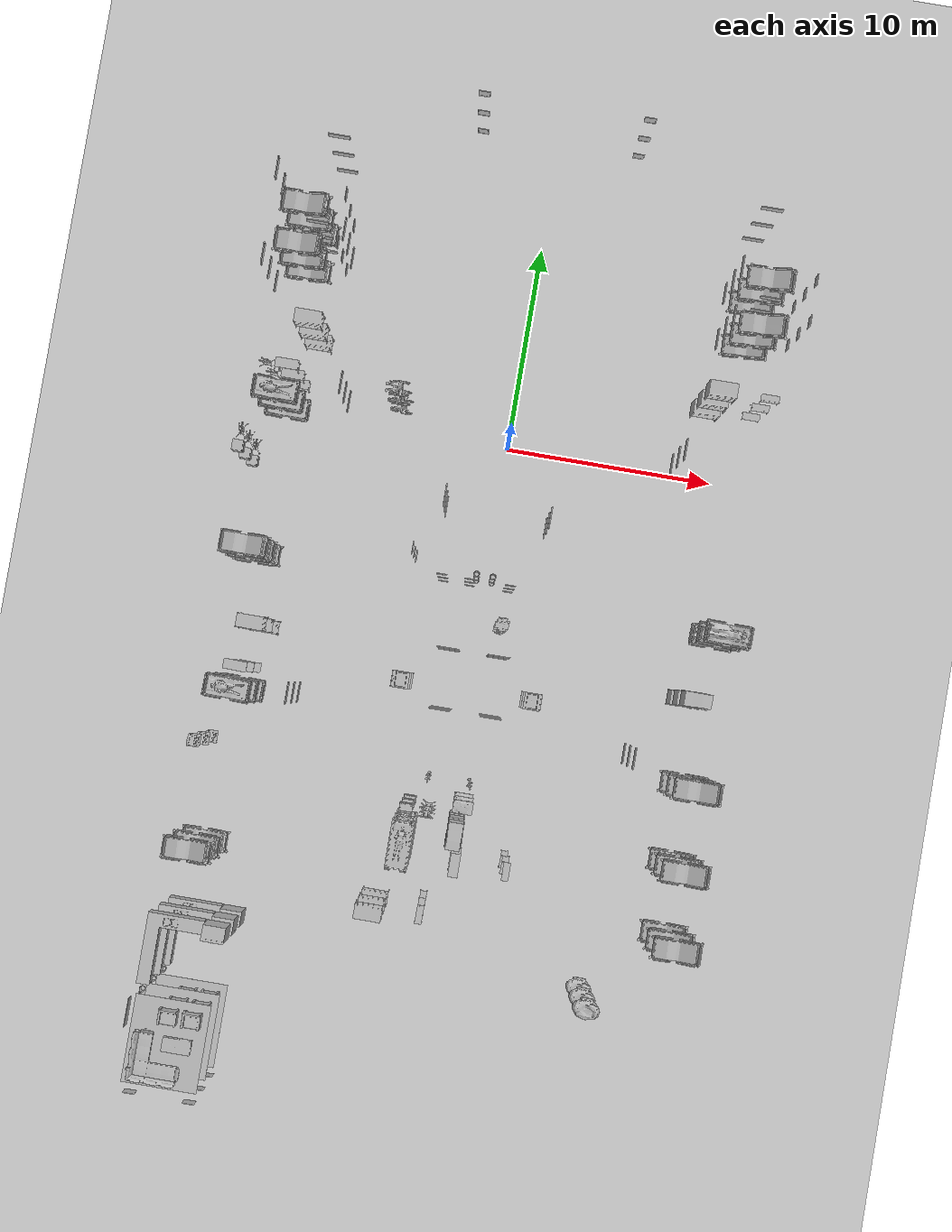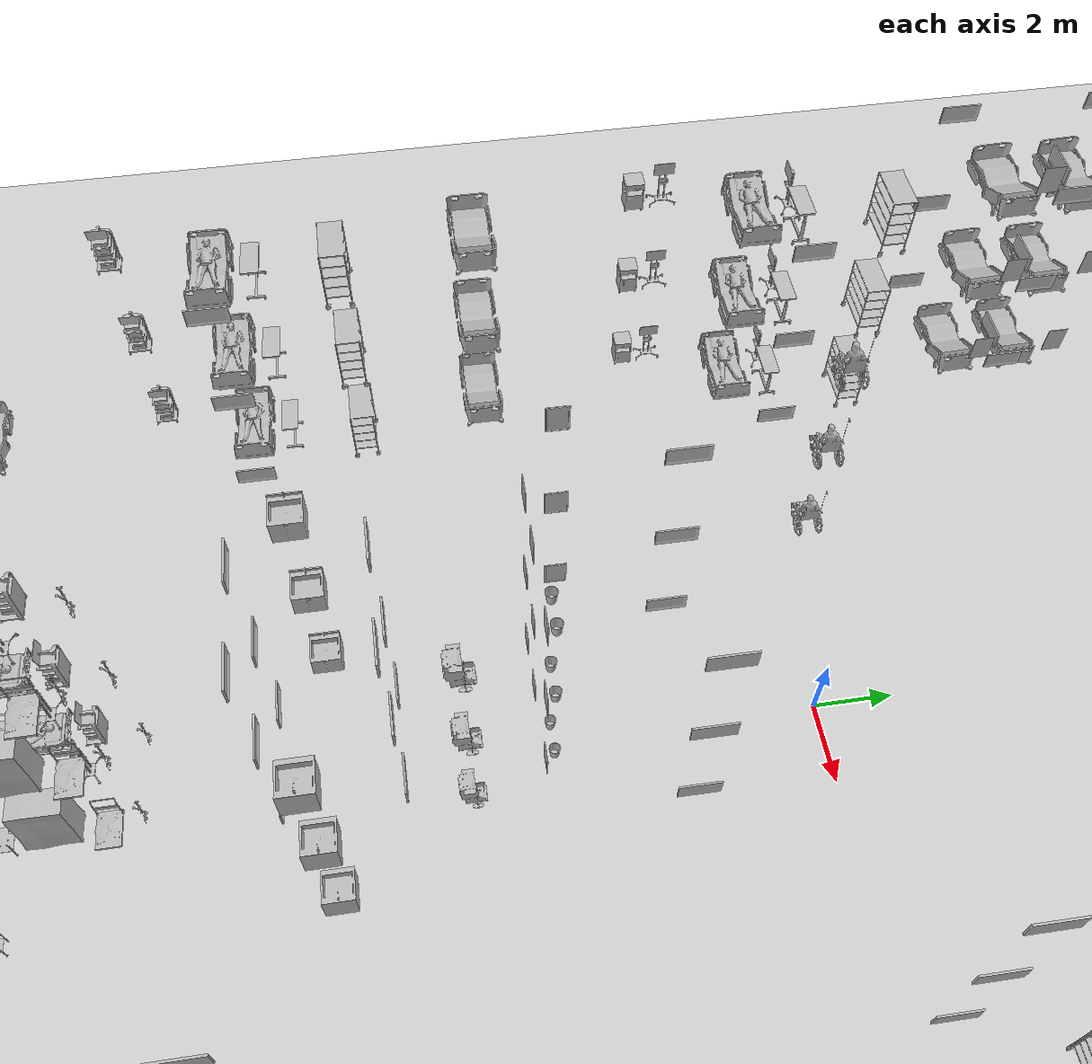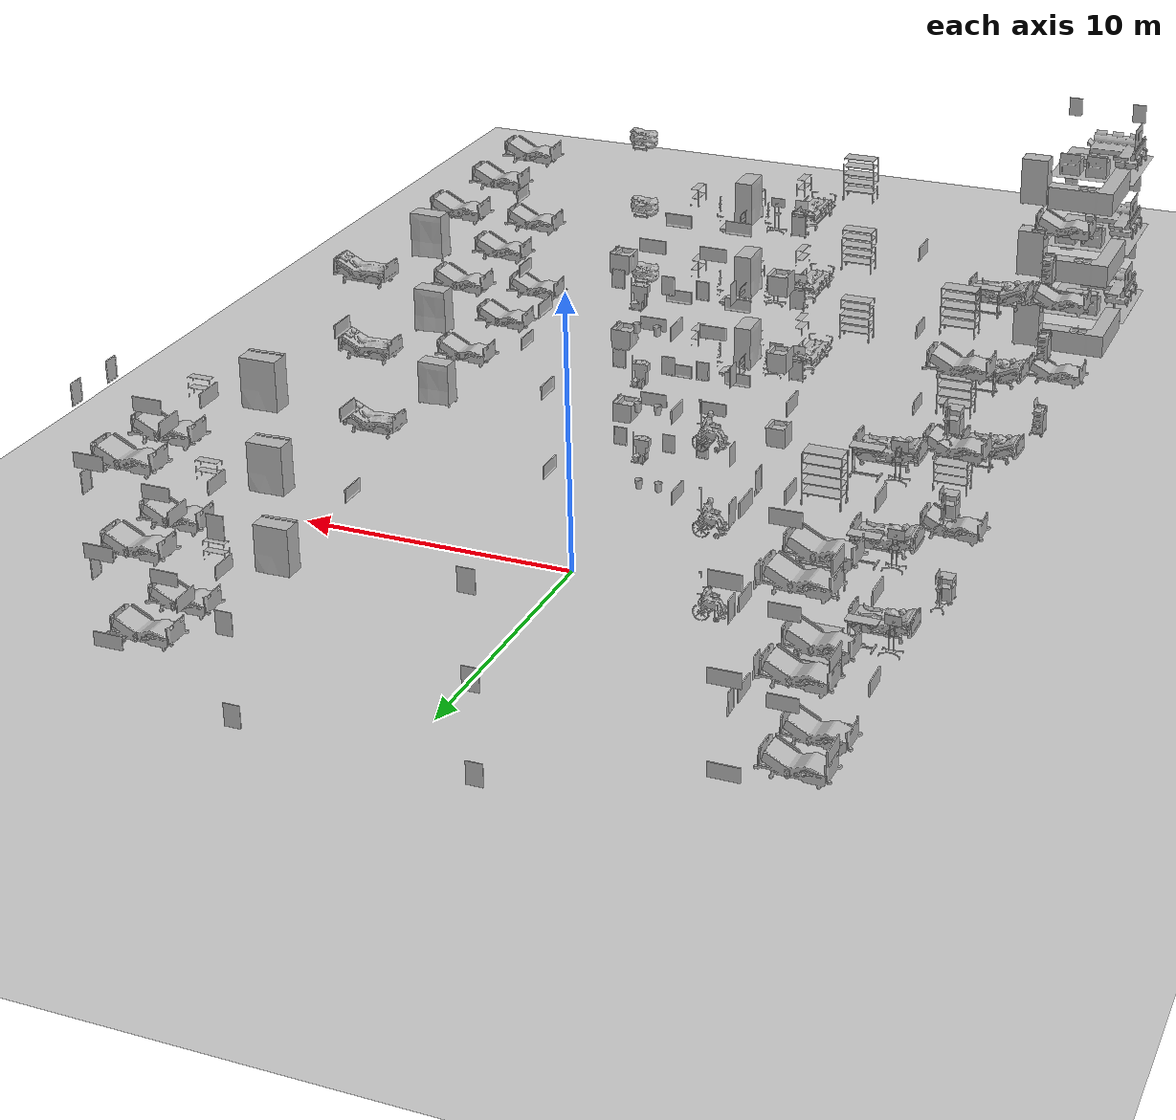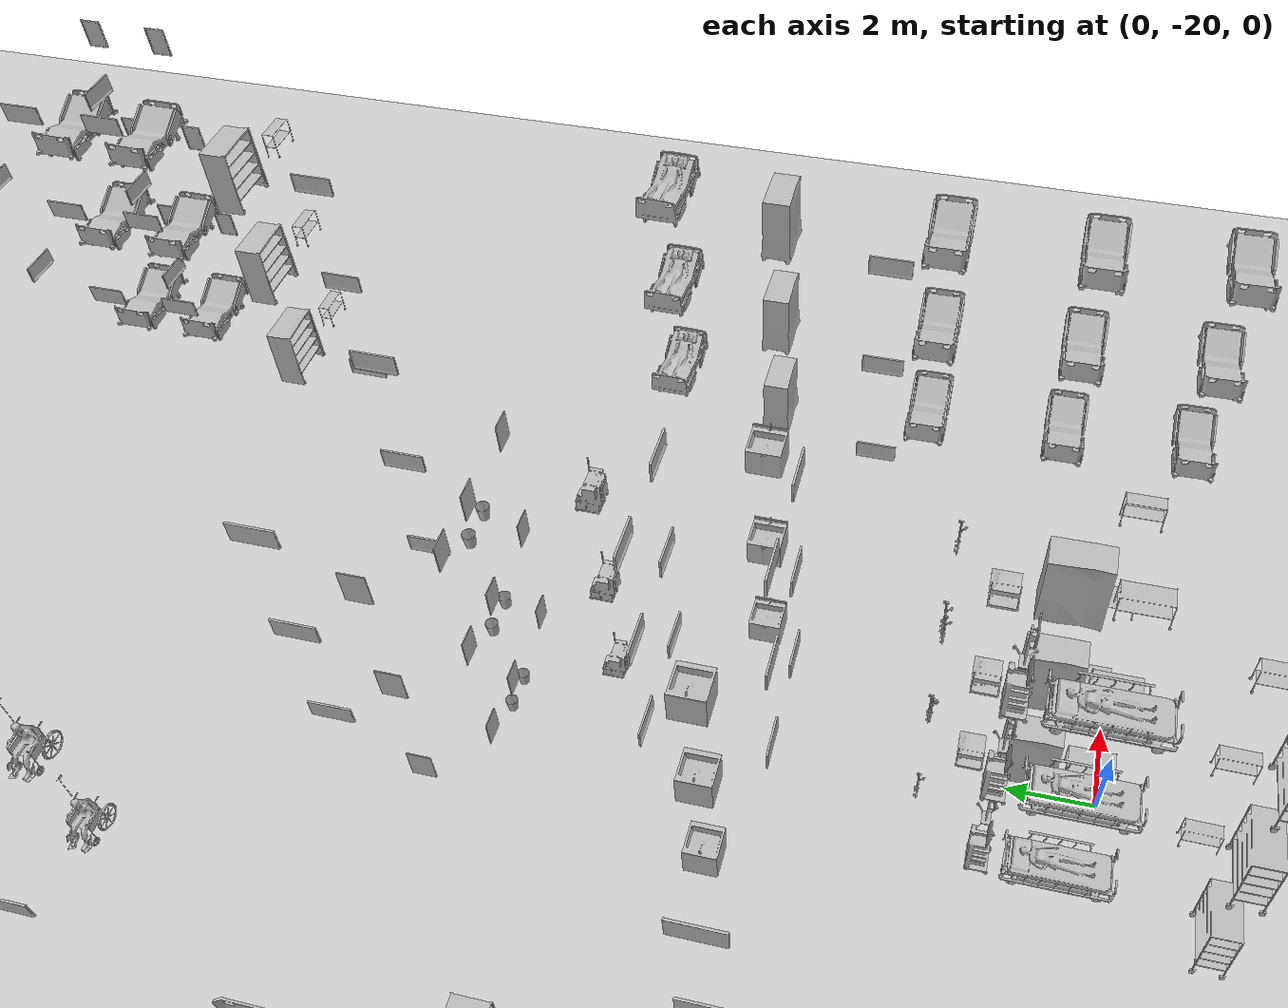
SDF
<sdf version="1.6">
 <world name="world">
  <gravity>0 0 -9.8</gravity>
  <physics default="0" name="default_physics" type="ode">
   <max_step_size>0.001</max_step_size>
   <real_time_factor>1</real_time_factor>
   <real_time_update_rate>1000</real_time_update_rate>
  </physics>
  <scene><ambient>0.6 0.6 0.6 1</ambient><background>0.4 0.4 0.4 1</background><shadows>false</shadows></scene>
  <plugin filename="gz-sim-physics-system" name="gz::sim::systems::Physics"/>
  <plugin filename="gz-sim-user-commands-system" name="gz::sim::systems::UserCommands"/>
  <plugin filename="gz-sim-scene-broadcaster-system" name="gz::sim::systems::SceneBroadcaster"/>
  <plugin filename="gz-sim-sensors-system" name="gz::sim::systems::Sensors">
   <render_engine>ogre2</render_engine>
  </plugin>
  <plugin filename="gz-sim-imu-system" name="gz::sim::systems::Imu"/>
  <plugin filename="gz-sim-contact-system" name="gz::sim::systems::Contact"/>
  <include><uri>model://sun</uri></include>
  <include><uri>model://ground_plane</uri><pose>0 0 -0.1 0 -0 0</pose></include>
  <include>
   <uri>model://CGMClassic</uri>
   <static>true</static>
   <name>CGMClassic_1</name>
   <pose>11.1777 -18.4129 0 0 0 -3.13719</pose>
  </include>
  <include>
   <uri>model://CGMClassic</uri>
   <static>true</static>
   <name>CGMClassic_2</name>
   <pose>11.1179 -14.6493 0 0 0 -3.13599</pose>
  </include>
  <include>
   <uri>model://PatientWheelChair</uri>
   <static>true</static>
   <name>PatientWheelChair_1</name>
   <pose>-5.46091 1.23577 0 0 0 -1.54828</pose>
  </include>
  <include>
   <uri>model://SurgicalTrolley</uri>
   <static>true</static>
   <name>SurgicalTrolley_1</name>
   <pose>11.4301 3.56328 0 0 -0 0</pose>
  </include>
  <include>
   <uri>model://CGMClassic</uri>
   <static>true</static>
   <name>CGMClassic_3</name>
   <pose>-11.2304 -21.1134 0 0 0 -3.11834</pose>
  </include>
  <include>
   <uri>model://aws_robomaker_residential_CoffeeTable_01</uri>
   <static>true</static>
   <name>aws_robomaker_residential_CoffeeTable_01_1</name>
   <pose>-10.2383 -29.9144 0 0 -0 0</pose>
  </include>
  <include>
   <uri>model://aws_robomaker_residential_Sofa_01</uri>
   <static>true</static>
   <name>aws_robomaker_residential_Sofa_01_1</name>
   <pose>-11.077 -30.5544 -1e-05 2.6e-05 -3e-06 1.56984</pose>
  </include>
  <include>
   <uri>model://aws_robomaker_residential_TV_02</uri>
   <static>true</static>
   <name>aws_robomaker_residential_TV_02_1</name>
   <pose>-12.4122 -28.4594 1.53211 0 -0 3.13999</pose>
  </include>
  <include>
   <uri>model://aws_robomaker_residential_KitchenCabinet_01</uri>
   <static>true</static>
   <name>aws_robomaker_residential_KitchenCabinet_01_1</name>
   <pose>-11.1379 -25.6941 0 0 -0 0</pose>
  </include>
  <include>
   <uri>model://aws_robomaker_residential_Refrigerator_01</uri>
   <static>true</static>
   <name>aws_robomaker_residential_Refrigerator_01_1</name>
   <pose>-9.28238 -24.5015 0 0 -0 0</pose>
  </include>
  <include>
   <uri>model://aws_robomaker_residential_SofaB_01</uri>
   <static>true</static>
   <name>aws_robomaker_residential_SofaB_01_1</name>
   <pose>-10.8238 -28.6662 -5e-06 -1.3e-05 -2e-06 -1.56116</pose>
  </include>
  <include>
   <uri>model://aws_robomaker_residential_SofaB_01</uri>
   <static>true</static>
   <name>aws_robomaker_residential_SofaB_01_2</name>
   <pose>-9.73697 -28.6538 -3e-06 1.3e-05 -4e-06 -1.56077</pose>
  </include>
  <include>
   <uri>model://aws_robomaker_residential_PortraitA_01</uri>
   <static>true</static>
   <name>aws_robomaker_residential_PortraitA_01_1</name>
   <pose>1.14738 -6.92303 1.41115 0 -0 0</pose>
  </include>
  <include>
   <uri>model://aws_robomaker_residential_PortraitD_02</uri>
   <static>true</static>
   <name>aws_robomaker_residential_PortraitD_02_1</name>
   <pose>2.40772 -3.61975 1.54508 0 0 -1.57619</pose>
  </include>
  <include>
   <uri>model://MopCart3</uri>
   <static>true</static>
   <name>MopCart3_1</name>
   <pose>1.07736 -8.59036 -6.7e-05 0 1e-06 0</pose>
  </include>
  <include>
   <uri>model://aws_robomaker_residential_PortraitA_01</uri>
   <static>true</static>
   <name>aws_robomaker_residential_PortraitA_01_2</name>
   <pose>-0.706092 -6.93108 1.41115 0 -0 0</pose>
  </include>
  <include>
   <uri>model://aws_robomaker_residential_PortraitA_01</uri>
   <static>true</static>
   <name>aws_robomaker_residential_PortraitA_01_3</name>
   <pose>-1.97245 -6.9216 1.41115 0 -0 0</pose>
  </include>
  <include>
   <uri>model://aws_robomaker_residential_PortraitD_02</uri>
   <static>true</static>
   <name>aws_robomaker_residential_PortraitD_02_2</name>
   <pose>-2.43341 -3.38621 1.54508 0 -0 1.57083</pose>
  </include>
  <include>
   <uri>model://ElderLadyPatient</uri>
   <static>true</static>
   <name>ElderLadyPatient_1</name>
   <pose>-10.9972 0.231354 0.001654 0 -0 0</pose>
  </include>
  <include>
   <uri>model://ElderLadyPatient</uri>
   <static>true</static>
   <name>ElderLadyPatient_2</name>
   <pose>-10.8133 -13.5925 0.001657 0 -2e-06 -0.025052</pose>
  </include>
  <include>
   <uri>model://CGMClassic</uri>
   <static>true</static>
   <name>CGMClassic_4</name>
   <pose>-11.0878 -7.00992 0 0 -0 3.1351</pose>
  </include>
  <include>
   <uri>model://aws_robomaker_residential_Trash_01</uri>
   <static>true</static>
   <name>aws_robomaker_residential_Trash_01_1</name>
   <pose>0.316178 -6.58235 0.000903 0 -2e-06 0</pose>
  </include>
  <include>
   <uri>model://aws_robomaker_residential_Trash_01</uri>
   <static>true</static>
   <name>aws_robomaker_residential_Trash_01_2</name>
   <pose>-0.436645 -6.57758 0.000903 -1e-06 -1e-06 0</pose>
  </include>
  <include>
   <uri>model://aws_robomaker_residential_Trash_01</uri>
   <static>true</static>
   <name>aws_robomaker_residential_Trash_01_3</name>
   <pose>-12.1773 -27.6293 0.000894 -1e-06 -1e-06 0</pose>
  </include>
  <include>
   <uri>model://aws_robomaker_residential_PortraitE_01</uri>
   <static>true</static>
   <name>aws_robomaker_residential_PortraitE_01_1</name>
   <pose>-9.06141 -31.9238 1.38136 0 -0 0</pose>
  </include>
  <include>
   <uri>model://aws_robomaker_residential_PortraitE_01</uri>
   <static>true</static>
   <name>aws_robomaker_residential_PortraitE_01_2</name>
   <pose>-11.7398 -31.9011 1.38136 0 -0 0</pose>
  </include>
  <include>
   <uri>model://InstrumentCart1</uri>
   <static>true</static>
   <name>InstrumentCart1_1</name>
   <pose>-11.8071 -16.1825 0 0 -0 1.56702</pose>
  </include>
  <include>
   <uri>model://InstrumentCart2</uri>
   <static>true</static>
   <name>InstrumentCart2_1</name>
   <pose>-12.0906 -1.87329 0.051875 0 -0 1.57773</pose>
  </include>
  <include>
   <uri>model://InstrumentCart2</uri>
   <static>true</static>
   <name>InstrumentCart2_2</name>
   <pose>-11.5231 1.34237 0 0 -0 0</pose>
  </include>
  <include>
   <uri>model://aws_robomaker_residential_Carpet_01</uri>
   <static>true</static>
   <name>aws_robomaker_residential_Carpet_01_1</name>
   <pose>-10.7338 -29.9243 0 0 -0 0</pose>
  </include>
  <include>
   <uri>model://CGMClassic</uri>
   <static>true</static>
   <name>CGMClassic_5</name>
   <pose>-11.0106 8.9505 -0.008203 -0.035019 -0.000392 3.13388</pose>
  </include>
  <include>
   <uri>model://CGMClassic</uri>
   <static>true</static>
   <name>CGMClassic_6</name>
   <pose>-11.025 7.10335 0 -0.035021 1.8e-05 -3.13762</pose>
  </include>
  <include>
   <uri>model://BedTable</uri>
   <static>true</static>
   <name>BedTable_1</name>
   <pose>-10.4759 1.39442 0.001184 0 -3e-06 0</pose>
  </include>
  <include>
   <uri>model://BedTable</uri>
   <static>true</static>
   <name>BedTable_2</name>
   <pose>-10.5874 -12.5084 0.001189 0 -0 3.11588</pose>
  </include>
  <include>
   <uri>model://BedsideTable</uri>
   <static>true</static>
   <name>BedsideTable_1</name>
   <pose>-12.1499 -2.63111 0.00018 1e-06 -0 -0.00878</pose>
  </include>
  <include>
   <uri>model://TrolleyBedPatient</uri>
   <static>true</static>
   <name>TrolleyBedPatient_1</name>
   <pose>-1.83202 -19.2612 0 0 -0 0</pose>
  </include>
  <include>
   <uri>model://Shower</uri>
   <static>true</static>
   <name>Shower_1</name>
   <pose>-1.07422 -16.1332 0 0 -0 0</pose>
  </include>
  <include>
   <uri>model://Shower</uri>
   <static>true</static>
   <name>Shower_2</name>
   <pose>0.853327 -16.1492 0 0 -0 0</pose>
  </include>
  <include>
   <uri>model://SurgicalTrolley</uri>
   <static>true</static>
   <name>SurgicalTrolley_2</name>
   <pose>-0.411421 -22.2085 0 0 0 -1.58175</pose>
  </include>
  <include>
   <uri>model://SurgicalTrolley</uri>
   <static>true</static>
   <name>SurgicalTrolley_3</name>
   <pose>3.11747 -19.6565 0 0 -0 1.57031</pose>
  </include>
  <include>
   <uri>model://SurgicalTrolleyMed</uri>
   <static>true</static>
   <name>SurgicalTrolleyMed_1</name>
   <pose>0.770804 -19.7749 0 0 0 -1.56798</pose>
  </include>
  <include>
   <uri>model://InstrumentCart1</uri>
   <static>true</static>
   <name>InstrumentCart1_2</name>
   <pose>-11.8071 -16.1825 0 0 -0 1.56702</pose>
  </include>
  <include>
   <uri>model://InstrumentCart2</uri>
   <static>true</static>
   <name>InstrumentCart2_3</name>
   <pose>-0.869537 -17.7436 0 0 0 -0.002595</pose>
  </include>
  <include>
   <uri>model://StorageRackCovered</uri>
   <static>true</static>
   <name>StorageRackCovered_1</name>
   <pose>0.546476 -18.3985 -0 0 -0 1.56584</pose>
  </include>
  <include>
   <uri>model://StorageRack</uri>
   <static>true</static>
   <name>StorageRack_2</name>
   <pose>-2.69866 -22.4178 -8e-06 0 4e-06 0</pose>
  </include>
  <include>
   <uri>model://KitchenSink</uri>
   <static>true</static>
   <name>KitchenSink_1</name>
   <pose>3.06236 -11.8809 -0.001614 0 -0 3.1391</pose>
  </include>
  <include>
   <uri>model://KitchenSink</uri>
   <static>true</static>
   <name>KitchenSink_2</name>
   <pose>-3.09305 -11.8988 -0.001609 0 -0 0</pose>
  </include>
  <include>
   <uri>model://aws_robomaker_residential_PortraitD_01</uri>
   <static>true</static>
   <name>aws_robomaker_residential_PortraitD_01_1</name>
   <pose>-1.14723 -10.143 1.57344 0 -0 0</pose>
  </include>
  <include>
   <uri>model://aws_robomaker_residential_PortraitD_01</uri>
   <static>true</static>
   <name>aws_robomaker_residential_PortraitD_01_2</name>
   <pose>1.16956 -10.1327 1.57344 0 -0 0</pose>
  </include>
  <include>
   <uri>model://aws_robomaker_residential_PortraitD_01</uri>
   <static>true</static>
   <name>aws_robomaker_residential_PortraitD_01_3</name>
   <pose>1.2703 -12.9084 1.57344 0 0 -3.14134</pose>
  </include>
  <include>
   <uri>model://aws_robomaker_residential_PortraitD_01</uri>
   <static>true</static>
   <name>aws_robomaker_residential_PortraitD_01_4</name>
   <pose>-1.06108 -12.9155 1.57344 0 0 -3.14134</pose>
  </include>
  <include>
   <uri>model://aws_robomaker_residential_PortraitD_02</uri>
   <static>true</static>
   <name>aws_robomaker_residential_PortraitD_02_3</name>
   <pose>7.89294 -13.6155 1.54508 0 0 -1.57619</pose>
  </include>
  <include>
   <uri>model://aws_robomaker_residential_PortraitD_02</uri>
   <static>true</static>
   <name>aws_robomaker_residential_PortraitD_02_4</name>
   <pose>7.88791 0.445446 1.54508 0 0 -1.57619</pose>
  </include>
  <include>
   <uri>model://aws_robomaker_residential_PortraitD_02</uri>
   <static>true</static>
   <name>aws_robomaker_residential_PortraitD_02_5</name>
   <pose>-7.92095 0.84255 1.54508 0 -0 1.57083</pose>
  </include>
  <include>
   <uri>model://aws_robomaker_residential_PortraitD_02</uri>
   <static>true</static>
   <name>aws_robomaker_residential_PortraitD_02_6</name>
   <pose>-7.90937 -13.3417 1.54508 0 -0 1.57083</pose>
  </include>
  <include>
   <uri>model://aws_robomaker_residential_PortraitD_02</uri>
   <static>true</static>
   <name>aws_robomaker_residential_PortraitD_02_7</name>
   <pose>-12.3841 6.01232 1.54508 0 -0 1.57083</pose>
  </include>
  <include>
   <uri>model://aws_robomaker_residential_PortraitD_02</uri>
   <static>true</static>
   <name>aws_robomaker_residential_PortraitD_02_8</name>
   <pose>-12.4276 9.98828 1.54508 0 -0 1.57083</pose>
  </include>
  <include>
   <uri>model://aws_robomaker_residential_PortraitE_02</uri>
   <static>true</static>
   <name>aws_robomaker_residential_PortraitE_02_1</name>
   <pose>-9.08927 9.19494 1.84129 0 0 -1.5625</pose>
  </include>
  <include>
   <uri>model://aws_robomaker_residential_PortraitD_02</uri>
   <static>true</static>
   <name>aws_robomaker_residential_PortraitD_02_9</name>
   <pose>-8.94468 7.73571 1.54508 0 -0 1.57083</pose>
  </include>
  <include>
   <uri>model://aws_robomaker_residential_PortraitE_02</uri>
   <static>true</static>
   <name>aws_robomaker_residential_PortraitE_02_2</name>
   <pose>-9.08305 7.04089 1.84129 0 0 -1.5625</pose>
  </include>
  <include>
   <uri>model://aws_robomaker_residential_PortraitD_01</uri>
   <static>true</static>
   <name>aws_robomaker_residential_PortraitD_01_5</name>
   <pose>-9.9148 11.9172 1.40573 0 -0 0</pose>
  </include>
  <include>
   <uri>model://aws_robomaker_residential_PortraitD_01</uri>
   <static>true</static>
   <name>aws_robomaker_residential_PortraitD_01_6</name>
   <pose>-10.2134 7.89752 1.40573 0 -0 0</pose>
  </include>
  <include>
   <uri>model://CGMClassic</uri>
   <static>true</static>
   <name>CGMClassic_7</name>
   <pose>10.6166 9.06291 -0.008203 -0.03501 0.000885 -3.11285</pose>
  </include>
  <include>
   <uri>model://CGMClassic</uri>
   <static>true</static>
   <name>CGMClassic_8</name>
   <pose>10.6006 6.90956 -0.008203 -0.035003 0.001133 -3.10576</pose>
  </include>
  <include>
   <uri>model://aws_robomaker_residential_PortraitD_02</uri>
   <static>true</static>
   <name>aws_robomaker_residential_PortraitD_02_10</name>
   <pose>9.06517 6.78742 1.54508 0 -0 1.57083</pose>
  </include>
  <include>
   <uri>model://aws_robomaker_residential_PortraitD_02</uri>
   <static>true</static>
   <name>aws_robomaker_residential_PortraitD_02_11</name>
   <pose>9.06517 9.05858 1.54508 0 -0 1.57083</pose>
  </include>
  <include>
   <uri>model://aws_robomaker_residential_PortraitE_02</uri>
   <static>true</static>
   <name>aws_robomaker_residential_PortraitE_02_3</name>
   <pose>12.3972 6.98849 1.84129 0 0 -1.5625</pose>
  </include>
  <include>
   <uri>model://aws_robomaker_residential_PortraitE_02</uri>
   <static>true</static>
   <name>aws_robomaker_residential_PortraitE_02_4</name>
   <pose>12.3972 8.87466 1.84129 0 0 -1.5625</pose>
  </include>
  <include>
   <uri>model://aws_robomaker_residential_PortraitE_02</uri>
   <static>true</static>
   <name>aws_robomaker_residential_PortraitE_02_5</name>
   <pose>-3.4385 -6.00525 1.84129 0 -0 1.56777</pose>
  </include>
  <include>
   <uri>model://aws_robomaker_residential_PortraitD_01</uri>
   <static>true</static>
   <name>aws_robomaker_residential_PortraitD_01_7</name>
   <pose>10.596 7.88308 1.40573 0 -0 0</pose>
  </include>
  <include>
   <uri>model://aws_robomaker_residential_PortraitD_01</uri>
   <static>true</static>
   <name>aws_robomaker_residential_PortraitD_01_8</name>
   <pose>9.98896 11.914 1.40573 0 -0 0</pose>
  </include>
  <include>
   <uri>model://ParkingTrolleyMin</uri>
   <static>true</static>
   <name>ParkingTrolleyMin_1</name>
   <pose>0.715846 -17.1496 -0.000121 -1e-06 -0 0</pose>
  </include>
  <include>
   <uri>model://MalePatientBed</uri>
   <static>true</static>
   <name>MalePatientBed_1</name>
   <pose>11.3771 -7.38891 0.001658 -1e-06 1e-06 3.11598</pose>
  </include>
  <include>
   <uri>model://CGMClassic</uri>
   <static>true</static>
   <name>CGMClassic_9</name>
   <pose>11.3613 -21.8867 0 0 0 -3.12292</pose>
  </include>
  <include>
   <uri>model://StorageRackCoverOpen</uri>
   <static>true</static>
   <name>StorageRackCoverOpen_1</name>
   <pose>9.15016 3.44263 -9e-06 1e-06 2e-06 0</pose>
  </include>
  <include>
   <uri>model://StorageRack</uri>
   <static>true</static>
   <name>StorageRack_3</name>
   <pose>-10.1178 -10.4694 -0 0 -0 0</pose>
  </include>
  <include>
   <uri>model://StorageRack</uri>
   <static>true</static>
   <name>StorageRack_4</name>
   <pose>-9.91557 3.5644 -9e-06 1e-06 1e-06 -0.000273</pose>
  </include>
  <include>
   <uri>model://StorageRackCovered</uri>
   <static>true</static>
   <name>StorageRackCovered_2</name>
   <pose>10.294 -10.577 -7e-06 3e-06 -0 3.13389</pose>
  </include>
  <include>
   <uri>model://InstrumentCart1</uri>
   <static>true</static>
   <name>InstrumentCart1_3</name>
   <pose>-1.83539 -17.5879 0 0 -0 0</pose>
  </include>
  <include>
   <uri>model://ParkingTrolleyMax</uri>
   <static>true</static>
   <name>ParkingTrolleyMax_1</name>
   <pose>7.71054 -25.1326 -0.000121 1e-06 -0 -1.59536</pose>
  </include>
  <include>
   <uri>model://aws_robomaker_residential_PortraitE_02</uri>
   <static>true</static>
   <name>aws_robomaker_residential_PortraitE_02_6</name>
   <pose>-3.74211 14.8725 1.54379 0 -0 0</pose>
  </include>
  <include>
   <uri>model://aws_robomaker_residential_PortraitE_01</uri>
   <static>true</static>
   <name>aws_robomaker_residential_PortraitE_01_3</name>
   <pose>3.85701 14.8779 1.69742 0 -0 0</pose>
  </include>
  <include>
   <uri>model://CGMClassic</uri>
   <static>true</static>
   <name>floor_1_CGMClassic_1</name>
   <pose>11.1777 -18.4129 3.0 0 0 -3.13719</pose>
  </include>
  <include>
   <uri>model://CGMClassic</uri>
   <static>true</static>
   <name>floor_1_CGMClassic_2</name>
   <pose>11.1179 -14.6493 3.0 0 0 -3.13599</pose>
  </include>
  <include>
   <uri>model://PatientWheelChair</uri>
   <static>true</static>
   <name>floor_1_PatientWheelChair_1</name>
   <pose>-5.46091 1.23577 3.0 0 0 -1.54828</pose>
  </include>
  <include>
   <uri>model://SurgicalTrolley</uri>
   <static>true</static>
   <name>floor_1_SurgicalTrolley_1</name>
   <pose>11.4301 3.56328 3.0 0 -0 0</pose>
  </include>
  <include>
   <uri>model://CGMClassic</uri>
   <static>true</static>
   <name>floor_1_CGMClassic_3</name>
   <pose>-11.2304 -21.1134 3.0 0 0 -3.11834</pose>
  </include>
  <include>
   <uri>model://aws_robomaker_residential_CoffeeTable_01</uri>
   <static>true</static>
   <name>floor_1_aws_robomaker_residential_CoffeeTable_01_1</name>
   <pose>-10.2383 -29.9144 3.0 0 -0 0</pose>
  </include>
  <include>
   <uri>model://aws_robomaker_residential_Sofa_01</uri>
   <static>true</static>
   <name>floor_1_aws_robomaker_residential_Sofa_01_1</name>
   <pose>-11.077 -30.5544 2.99999 2.6e-05 -3e-06 1.56984</pose>
  </include>
  <include>
   <uri>model://aws_robomaker_residential_TV_02</uri>
   <static>true</static>
   <name>floor_1_aws_robomaker_residential_TV_02_1</name>
   <pose>-12.4122 -28.4594 4.53211 0 -0 3.13999</pose>
  </include>
  <include>
   <uri>model://aws_robomaker_residential_KitchenCabinet_01</uri>
   <static>true</static>
   <name>floor_1_aws_robomaker_residential_KitchenCabinet_01_1</name>
   <pose>-11.1379 -25.6941 3.0 0 -0 0</pose>
  </include>
  <include>
   <uri>model://aws_robomaker_residential_Refrigerator_01</uri>
   <static>true</static>
   <name>floor_1_aws_robomaker_residential_Refrigerator_01_1</name>
   <pose>-9.28238 -24.5015 3.0 0 -0 0</pose>
  </include>
  <include>
   <uri>model://aws_robomaker_residential_SofaB_01</uri>
   <static>true</static>
   <name>floor_1_aws_robomaker_residential_SofaB_01_1</name>
   <pose>-10.8238 -28.6662 2.999995 -1.3e-05 -2e-06 -1.56116</pose>
  </include>
  <include>
   <uri>model://aws_robomaker_residential_SofaB_01</uri>
   <static>true</static>
   <name>floor_1_aws_robomaker_residential_SofaB_01_2</name>
   <pose>-9.73697 -28.6538 2.999997 1.3e-05 -4e-06 -1.56077</pose>
  </include>
  <include>
   <uri>model://aws_robomaker_residential_PortraitA_01</uri>
   <static>true</static>
   <name>floor_1_aws_robomaker_residential_PortraitA_01_1</name>
   <pose>1.14738 -6.92303 4.41115 0 -0 0</pose>
  </include>
  <include>
   <uri>model://aws_robomaker_residential_PortraitD_02</uri>
   <static>true</static>
   <name>floor_1_aws_robomaker_residential_PortraitD_02_1</name>
   <pose>2.40772 -3.61975 4.5450800000000005 0 0 -1.57619</pose>
  </include>
  <include>
   <uri>model://MopCart3</uri>
   <static>true</static>
   <name>floor_1_MopCart3_1</name>
   <pose>1.07736 -8.59036 2.999933 0 1e-06 0</pose>
  </include>
  <include>
   <uri>model://aws_robomaker_residential_PortraitA_01</uri>
   <static>true</static>
   <name>floor_1_aws_robomaker_residential_PortraitA_01_2</name>
   <pose>-0.706092 -6.93108 4.41115 0 -0 0</pose>
  </include>
  <include>
   <uri>model://aws_robomaker_residential_PortraitA_01</uri>
   <static>true</static>
   <name>floor_1_aws_robomaker_residential_PortraitA_01_3</name>
   <pose>-1.97245 -6.9216 4.41115 0 -0 0</pose>
  </include>
  <include>
   <uri>model://aws_robomaker_residential_PortraitD_02</uri>
   <static>true</static>
   <name>floor_1_aws_robomaker_residential_PortraitD_02_2</name>
   <pose>-2.43341 -3.38621 4.5450800000000005 0 -0 1.57083</pose>
  </include>
  <include>
   <uri>model://ElderLadyPatient</uri>
   <static>true</static>
   <name>floor_1_ElderLadyPatient_1</name>
   <pose>-10.9972 0.231354 3.001654 0 -0 0</pose>
  </include>
  <include>
   <uri>model://ElderLadyPatient</uri>
   <static>true</static>
   <name>floor_1_ElderLadyPatient_2</name>
   <pose>-10.8133 -13.5925 3.001657 0 -2e-06 -0.025052</pose>
  </include>
  <include>
   <uri>model://CGMClassic</uri>
   <static>true</static>
   <name>floor_1_CGMClassic_4</name>
   <pose>-11.0878 -7.00992 3.0 0 -0 3.1351</pose>
  </include>
  <include>
   <uri>model://aws_robomaker_residential_Trash_01</uri>
   <static>true</static>
   <name>floor_1_aws_robomaker_residential_Trash_01_1</name>
   <pose>0.316178 -6.58235 3.000903 0 -2e-06 0</pose>
  </include>
  <include>
   <uri>model://aws_robomaker_residential_Trash_01</uri>
   <static>true</static>
   <name>floor_1_aws_robomaker_residential_Trash_01_2</name>
   <pose>-0.436645 -6.57758 3.000903 -1e-06 -1e-06 0</pose>
  </include>
  <include>
   <uri>model://aws_robomaker_residential_Trash_01</uri>
   <static>true</static>
   <name>floor_1_aws_robomaker_residential_Trash_01_3</name>
   <pose>-12.1773 -27.6293 3.000894 -1e-06 -1e-06 0</pose>
  </include>
  <include>
   <uri>model://aws_robomaker_residential_PortraitE_01</uri>
   <static>true</static>
   <name>floor_1_aws_robomaker_residential_PortraitE_01_1</name>
   <pose>-9.06141 -31.9238 4.38136 0 -0 0</pose>
  </include>
  <include>
   <uri>model://aws_robomaker_residential_PortraitE_01</uri>
   <static>true</static>
   <name>floor_1_aws_robomaker_residential_PortraitE_01_2</name>
   <pose>-11.7398 -31.9011 4.38136 0 -0 0</pose>
  </include>
  <include>
   <uri>model://InstrumentCart1</uri>
   <static>true</static>
   <name>floor_1_InstrumentCart1_1</name>
   <pose>-11.8071 -16.1825 3.0 0 -0 1.56702</pose>
  </include>
  <include>
   <uri>model://InstrumentCart2</uri>
   <static>true</static>
   <name>floor_1_InstrumentCart2_1</name>
   <pose>-12.0906 -1.87329 3.051875 0 -0 1.57773</pose>
  </include>
  <include>
   <uri>model://InstrumentCart2</uri>
   <static>true</static>
   <name>floor_1_InstrumentCart2_2</name>
   <pose>-11.5231 1.34237 3.0 0 -0 0</pose>
  </include>
  <include>
   <uri>model://aws_robomaker_residential_Carpet_01</uri>
   <static>true</static>
   <name>floor_1_aws_robomaker_residential_Carpet_01_1</name>
   <pose>-10.7338 -29.9243 3.0 0 -0 0</pose>
  </include>
  <include>
   <uri>model://CGMClassic</uri>
   <static>true</static>
   <name>floor_1_CGMClassic_5</name>
   <pose>-11.0106 8.9505 2.991797 -0.035019 -0.000392 3.13388</pose>
  </include>
  <include>
   <uri>model://CGMClassic</uri>
   <static>true</static>
   <name>floor_1_CGMClassic_6</name>
   <pose>-11.025 7.10335 3.0 -0.035021 1.8e-05 -3.13762</pose>
  </include>
  <include>
   <uri>model://BedTable</uri>
   <static>true</static>
   <name>floor_1_BedTable_1</name>
   <pose>-10.4759 1.39442 3.001184 0 -3e-06 0</pose>
  </include>
  <include>
   <uri>model://BedTable</uri>
   <static>true</static>
   <name>floor_1_BedTable_2</name>
   <pose>-10.5874 -12.5084 3.001189 0 -0 3.11588</pose>
  </include>
  <include>
   <uri>model://BedsideTable</uri>
   <static>true</static>
   <name>floor_1_BedsideTable_1</name>
   <pose>-12.1499 -2.63111 3.00018 1e-06 -0 -0.00878</pose>
  </include>
  <include>
   <uri>model://TrolleyBedPatient</uri>
   <static>true</static>
   <name>floor_1_TrolleyBedPatient_1</name>
   <pose>-1.83202 -19.2612 3.0 0 -0 0</pose>
  </include>
  <include>
   <uri>model://Shower</uri>
   <static>true</static>
   <name>floor_1_Shower_1</name>
   <pose>-1.07422 -16.1332 3.0 0 -0 0</pose>
  </include>
  <include>
   <uri>model://Shower</uri>
   <static>true</static>
   <name>floor_1_Shower_2</name>
   <pose>0.853327 -16.1492 3.0 0 -0 0</pose>
  </include>
  <include>
   <uri>model://SurgicalTrolley</uri>
   <static>true</static>
   <name>floor_1_SurgicalTrolley_2</name>
   <pose>-0.411421 -22.2085 3.0 0 0 -1.58175</pose>
  </include>
  <include>
   <uri>model://SurgicalTrolley</uri>
   <static>true</static>
   <name>floor_1_SurgicalTrolley_3</name>
   <pose>3.11747 -19.6565 3.0 0 -0 1.57031</pose>
  </include>
  <include>
   <uri>model://SurgicalTrolleyMed</uri>
   <static>true</static>
   <name>floor_1_SurgicalTrolleyMed_1</name>
   <pose>0.770804 -19.7749 3.0 0 0 -1.56798</pose>
  </include>
  <include>
   <uri>model://InstrumentCart1</uri>
   <static>true</static>
   <name>floor_1_InstrumentCart1_2</name>
   <pose>-11.8071 -16.1825 3.0 0 -0 1.56702</pose>
  </include>
  <include>
   <uri>model://InstrumentCart2</uri>
   <static>true</static>
   <name>floor_1_InstrumentCart2_3</name>
   <pose>-0.869537 -17.7436 3.0 0 0 -0.002595</pose>
  </include>
  <include>
   <uri>model://StorageRackCovered</uri>
   <static>true</static>
   <name>floor_1_StorageRackCovered_1</name>
   <pose>0.546476 -18.3985 3.0 0 -0 1.56584</pose>
  </include>
  <include>
   <uri>model://StorageRack</uri>
   <static>true</static>
   <name>floor_1_StorageRack_2</name>
   <pose>-2.69866 -22.4178 2.999992 0 4e-06 0</pose>
  </include>
  <include>
   <uri>model://KitchenSink</uri>
   <static>true</static>
   <name>floor_1_KitchenSink_1</name>
   <pose>3.06236 -11.8809 2.998386 0 -0 3.1391</pose>
  </include>
  <include>
   <uri>model://KitchenSink</uri>
   <static>true</static>
   <name>floor_1_KitchenSink_2</name>
   <pose>-3.09305 -11.8988 2.998391 0 -0 0</pose>
  </include>
  <include>
   <uri>model://aws_robomaker_residential_PortraitD_01</uri>
   <static>true</static>
   <name>floor_1_aws_robomaker_residential_PortraitD_01_1</name>
   <pose>-1.14723 -10.143 4.57344 0 -0 0</pose>
  </include>
  <include>
   <uri>model://aws_robomaker_residential_PortraitD_01</uri>
   <static>true</static>
   <name>floor_1_aws_robomaker_residential_PortraitD_01_2</name>
   <pose>1.16956 -10.1327 4.57344 0 -0 0</pose>
  </include>
  <include>
   <uri>model://aws_robomaker_residential_PortraitD_01</uri>
   <static>true</static>
   <name>floor_1_aws_robomaker_residential_PortraitD_01_3</name>
   <pose>1.2703 -12.9084 4.57344 0 0 -3.14134</pose>
  </include>
  <include>
   <uri>model://aws_robomaker_residential_PortraitD_01</uri>
   <static>true</static>
   <name>floor_1_aws_robomaker_residential_PortraitD_01_4</name>
   <pose>-1.06108 -12.9155 4.57344 0 0 -3.14134</pose>
  </include>
  <include>
   <uri>model://aws_robomaker_residential_PortraitD_02</uri>
   <static>true</static>
   <name>floor_1_aws_robomaker_residential_PortraitD_02_3</name>
   <pose>7.89294 -13.6155 4.5450800000000005 0 0 -1.57619</pose>
  </include>
  <include>
   <uri>model://aws_robomaker_residential_PortraitD_02</uri>
   <static>true</static>
   <name>floor_1_aws_robomaker_residential_PortraitD_02_4</name>
   <pose>7.88791 0.445446 4.5450800000000005 0 0 -1.57619</pose>
  </include>
  <include>
   <uri>model://aws_robomaker_residential_PortraitD_02</uri>
   <static>true</static>
   <name>floor_1_aws_robomaker_residential_PortraitD_02_5</name>
   <pose>-7.92095 0.84255 4.5450800000000005 0 -0 1.57083</pose>
  </include>
  <include>
   <uri>model://aws_robomaker_residential_PortraitD_02</uri>
   <static>true</static>
   <name>floor_1_aws_robomaker_residential_PortraitD_02_6</name>
   <pose>-7.90937 -13.3417 4.5450800000000005 0 -0 1.57083</pose>
  </include>
  <include>
   <uri>model://aws_robomaker_residential_PortraitD_02</uri>
   <static>true</static>
   <name>floor_1_aws_robomaker_residential_PortraitD_02_7</name>
   <pose>-12.3841 6.01232 4.5450800000000005 0 -0 1.57083</pose>
  </include>
  <include>
   <uri>model://aws_robomaker_residential_PortraitD_02</uri>
   <static>true</static>
   <name>floor_1_aws_robomaker_residential_PortraitD_02_8</name>
   <pose>-12.4276 9.98828 4.5450800000000005 0 -0 1.57083</pose>
  </include>
  <include>
   <uri>model://aws_robomaker_residential_PortraitE_02</uri>
   <static>true</static>
   <name>floor_1_aws_robomaker_residential_PortraitE_02_1</name>
   <pose>-9.08927 9.19494 4.84129 0 0 -1.5625</pose>
  </include>
  <include>
   <uri>model://aws_robomaker_residential_PortraitD_02</uri>
   <static>true</static>
   <name>floor_1_aws_robomaker_residential_PortraitD_02_9</name>
   <pose>-8.94468 7.73571 4.5450800000000005 0 -0 1.57083</pose>
  </include>
  <include>
   <uri>model://aws_robomaker_residential_PortraitE_02</uri>
   <static>true</static>
   <name>floor_1_aws_robomaker_residential_PortraitE_02_2</name>
   <pose>-9.08305 7.04089 4.84129 0 0 -1.5625</pose>
  </include>
  <include>
   <uri>model://aws_robomaker_residential_PortraitD_01</uri>
   <static>true</static>
   <name>floor_1_aws_robomaker_residential_PortraitD_01_5</name>
   <pose>-9.9148 11.9172 4.40573 0 -0 0</pose>
  </include>
  <include>
   <uri>model://aws_robomaker_residential_PortraitD_01</uri>
   <static>true</static>
   <name>floor_1_aws_robomaker_residential_PortraitD_01_6</name>
   <pose>-10.2134 7.89752 4.40573 0 -0 0</pose>
  </include>
  <include>
   <uri>model://CGMClassic</uri>
   <static>true</static>
   <name>floor_1_CGMClassic_7</name>
   <pose>10.6166 9.06291 2.991797 -0.03501 0.000885 -3.11285</pose>
  </include>
  <include>
   <uri>model://CGMClassic</uri>
   <static>true</static>
   <name>floor_1_CGMClassic_8</name>
   <pose>10.6006 6.90956 2.991797 -0.035003 0.001133 -3.10576</pose>
  </include>
  <include>
   <uri>model://aws_robomaker_residential_PortraitD_02</uri>
   <static>true</static>
   <name>floor_1_aws_robomaker_residential_PortraitD_02_10</name>
   <pose>9.06517 6.78742 4.5450800000000005 0 -0 1.57083</pose>
  </include>
  <include>
   <uri>model://aws_robomaker_residential_PortraitD_02</uri>
   <static>true</static>
   <name>floor_1_aws_robomaker_residential_PortraitD_02_11</name>
   <pose>9.06517 9.05858 4.5450800000000005 0 -0 1.57083</pose>
  </include>
  <include>
   <uri>model://aws_robomaker_residential_PortraitE_02</uri>
   <static>true</static>
   <name>floor_1_aws_robomaker_residential_PortraitE_02_3</name>
   <pose>12.3972 6.98849 4.84129 0 0 -1.5625</pose>
  </include>
  <include>
   <uri>model://aws_robomaker_residential_PortraitE_02</uri>
   <static>true</static>
   <name>floor_1_aws_robomaker_residential_PortraitE_02_4</name>
   <pose>12.3972 8.87466 4.84129 0 0 -1.5625</pose>
  </include>
  <include>
   <uri>model://aws_robomaker_residential_PortraitE_02</uri>
   <static>true</static>
   <name>floor_1_aws_robomaker_residential_PortraitE_02_5</name>
   <pose>-3.4385 -6.00525 4.84129 0 -0 1.56777</pose>
  </include>
  <include>
   <uri>model://aws_robomaker_residential_PortraitD_01</uri>
   <static>true</static>
   <name>floor_1_aws_robomaker_residential_PortraitD_01_7</name>
   <pose>10.596 7.88308 4.40573 0 -0 0</pose>
  </include>
  <include>
   <uri>model://aws_robomaker_residential_PortraitD_01</uri>
   <static>true</static>
   <name>floor_1_aws_robomaker_residential_PortraitD_01_8</name>
   <pose>9.98896 11.914 4.40573 0 -0 0</pose>
  </include>
  <include>
   <uri>model://ParkingTrolleyMin</uri>
   <static>true</static>
   <name>floor_1_ParkingTrolleyMin_1</name>
   <pose>0.715846 -17.1496 2.999879 -1e-06 -0 0</pose>
  </include>
  <include>
   <uri>model://MalePatientBed</uri>
   <static>true</static>
   <name>floor_1_MalePatientBed_1</name>
   <pose>11.3771 -7.38891 3.001658 -1e-06 1e-06 3.11598</pose>
  </include>
  <include>
   <uri>model://CGMClassic</uri>
   <static>true</static>
   <name>floor_1_CGMClassic_9</name>
   <pose>11.3613 -21.8867 3.0 0 0 -3.12292</pose>
  </include>
  <include>
   <uri>model://StorageRackCoverOpen</uri>
   <static>true</static>
   <name>floor_1_StorageRackCoverOpen_1</name>
   <pose>9.15016 3.44263 2.999991 1e-06 2e-06 0</pose>
  </include>
  <include>
   <uri>model://StorageRack</uri>
   <static>true</static>
   <name>floor_1_StorageRack_3</name>
   <pose>-10.1178 -10.4694 3.0 0 -0 0</pose>
  </include>
  <include>
   <uri>model://StorageRack</uri>
   <static>true</static>
   <name>floor_1_StorageRack_4</name>
   <pose>-9.91557 3.5644 2.999991 1e-06 1e-06 -0.000273</pose>
  </include>
  <include>
   <uri>model://StorageRackCovered</uri>
   <static>true</static>
   <name>floor_1_StorageRackCovered_2</name>
   <pose>10.294 -10.577 2.999993 3e-06 -0 3.13389</pose>
  </include>
  <include>
   <uri>model://InstrumentCart1</uri>
   <static>true</static>
   <name>floor_1_InstrumentCart1_3</name>
   <pose>-1.83539 -17.5879 3.0 0 -0 0</pose>
  </include>
  <include>
   <uri>model://ParkingTrolleyMax</uri>
   <static>true</static>
   <name>floor_1_ParkingTrolleyMax_1</name>
   <pose>7.71054 -25.1326 2.999879 1e-06 -0 -1.59536</pose>
  </include>
  <include>
   <uri>model://aws_robomaker_residential_PortraitE_02</uri>
   <static>true</static>
   <name>floor_1_aws_robomaker_residential_PortraitE_02_6</name>
   <pose>-3.74211 14.8725 4.5437899999999996 0 -0 0</pose>
  </include>
  <include>
   <uri>model://aws_robomaker_residential_PortraitE_01</uri>
   <static>true</static>
   <name>floor_1_aws_robomaker_residential_PortraitE_01_3</name>
   <pose>3.85701 14.8779 4.69742 0 -0 0</pose>
  </include>
  <include>
   <uri>model://CGMClassic</uri>
   <static>true</static>
   <name>floor_2_CGMClassic_1</name>
   <pose>11.1777 -18.4129 6.0 0 0 -3.13719</pose>
  </include>
  <include>
   <uri>model://CGMClassic</uri>
   <static>true</static>
   <name>floor_2_CGMClassic_2</name>
   <pose>11.1179 -14.6493 6.0 0 0 -3.13599</pose>
  </include>
  <include>
   <uri>model://PatientWheelChair</uri>
   <static>true</static>
   <name>floor_2_PatientWheelChair_1</name>
   <pose>-5.46091 1.23577 6.0 0 0 -1.54828</pose>
  </include>
  <include>
   <uri>model://SurgicalTrolley</uri>
   <static>true</static>
   <name>floor_2_SurgicalTrolley_1</name>
   <pose>11.4301 3.56328 6.0 0 -0 0</pose>
  </include>
  <include>
   <uri>model://CGMClassic</uri>
   <static>true</static>
   <name>floor_2_CGMClassic_3</name>
   <pose>-11.2304 -21.1134 6.0 0 0 -3.11834</pose>
  </include>
  <include>
   <uri>model://aws_robomaker_residential_CoffeeTable_01</uri>
   <static>true</static>
   <name>floor_2_aws_robomaker_residential_CoffeeTable_01_1</name>
   <pose>-10.2383 -29.9144 6.0 0 -0 0</pose>
  </include>
  <include>
   <uri>model://aws_robomaker_residential_Sofa_01</uri>
   <static>true</static>
   <name>floor_2_aws_robomaker_residential_Sofa_01_1</name>
   <pose>-11.077 -30.5544 5.99999 2.6e-05 -3e-06 1.56984</pose>
  </include>
  <include>
   <uri>model://aws_robomaker_residential_TV_02</uri>
   <static>true</static>
   <name>floor_2_aws_robomaker_residential_TV_02_1</name>
   <pose>-12.4122 -28.4594 7.53211 0 -0 3.13999</pose>
  </include>
  <include>
   <uri>model://aws_robomaker_residential_KitchenCabinet_01</uri>
   <static>true</static>
   <name>floor_2_aws_robomaker_residential_KitchenCabinet_01_1</name>
   <pose>-11.1379 -25.6941 6.0 0 -0 0</pose>
  </include>
  <include>
   <uri>model://aws_robomaker_residential_Refrigerator_01</uri>
   <static>true</static>
   <name>floor_2_aws_robomaker_residential_Refrigerator_01_1</name>
   <pose>-9.28238 -24.5015 6.0 0 -0 0</pose>
  </include>
  <include>
   <uri>model://aws_robomaker_residential_SofaB_01</uri>
   <static>true</static>
   <name>floor_2_aws_robomaker_residential_SofaB_01_1</name>
   <pose>-10.8238 -28.6662 5.999995 -1.3e-05 -2e-06 -1.56116</pose>
  </include>
  <include>
   <uri>model://aws_robomaker_residential_SofaB_01</uri>
   <static>true</static>
   <name>floor_2_aws_robomaker_residential_SofaB_01_2</name>
   <pose>-9.73697 -28.6538 5.999997 1.3e-05 -4e-06 -1.56077</pose>
  </include>
  <include>
   <uri>model://aws_robomaker_residential_PortraitA_01</uri>
   <static>true</static>
   <name>floor_2_aws_robomaker_residential_PortraitA_01_1</name>
   <pose>1.14738 -6.92303 7.41115 0 -0 0</pose>
  </include>
  <include>
   <uri>model://aws_robomaker_residential_PortraitD_02</uri>
   <static>true</static>
   <name>floor_2_aws_robomaker_residential_PortraitD_02_1</name>
   <pose>2.40772 -3.61975 7.5450800000000005 0 0 -1.57619</pose>
  </include>
  <include>
   <uri>model://MopCart3</uri>
   <static>true</static>
   <name>floor_2_MopCart3_1</name>
   <pose>1.07736 -8.59036 5.999933 0 1e-06 0</pose>
  </include>
  <include>
   <uri>model://aws_robomaker_residential_PortraitA_01</uri>
   <static>true</static>
   <name>floor_2_aws_robomaker_residential_PortraitA_01_2</name>
   <pose>-0.706092 -6.93108 7.41115 0 -0 0</pose>
  </include>
  <include>
   <uri>model://aws_robomaker_residential_PortraitA_01</uri>
   <static>true</static>
   <name>floor_2_aws_robomaker_residential_PortraitA_01_3</name>
   <pose>-1.97245 -6.9216 7.41115 0 -0 0</pose>
  </include>
  <include>
   <uri>model://aws_robomaker_residential_PortraitD_02</uri>
   <static>true</static>
   <name>floor_2_aws_robomaker_residential_PortraitD_02_2</name>
   <pose>-2.43341 -3.38621 7.5450800000000005 0 -0 1.57083</pose>
  </include>
  <include>
   <uri>model://ElderLadyPatient</uri>
   <static>true</static>
   <name>floor_2_ElderLadyPatient_1</name>
   <pose>-10.9972 0.231354 6.001654 0 -0 0</pose>
  </include>
  <include>
   <uri>model://ElderLadyPatient</uri>
   <static>true</static>
   <name>floor_2_ElderLadyPatient_2</name>
   <pose>-10.8133 -13.5925 6.001657 0 -2e-06 -0.025052</pose>
  </include>
  <include>
   <uri>model://CGMClassic</uri>
   <static>true</static>
   <name>floor_2_CGMClassic_4</name>
   <pose>-11.0878 -7.00992 6.0 0 -0 3.1351</pose>
  </include>
  <include>
   <uri>model://aws_robomaker_residential_Trash_01</uri>
   <static>true</static>
   <name>floor_2_aws_robomaker_residential_Trash_01_1</name>
   <pose>0.316178 -6.58235 6.000903 0 -2e-06 0</pose>
  </include>
  <include>
   <uri>model://aws_robomaker_residential_Trash_01</uri>
   <static>true</static>
   <name>floor_2_aws_robomaker_residential_Trash_01_2</name>
   <pose>-0.436645 -6.57758 6.000903 -1e-06 -1e-06 0</pose>
  </include>
  <include>
   <uri>model://aws_robomaker_residential_Trash_01</uri>
   <static>true</static>
   <name>floor_2_aws_robomaker_residential_Trash_01_3</name>
   <pose>-12.1773 -27.6293 6.000894 -1e-06 -1e-06 0</pose>
  </include>
  <include>
   <uri>model://aws_robomaker_residential_PortraitE_01</uri>
   <static>true</static>
   <name>floor_2_aws_robomaker_residential_PortraitE_01_1</name>
   <pose>-9.06141 -31.9238 7.38136 0 -0 0</pose>
  </include>
  <include>
   <uri>model://aws_robomaker_residential_PortraitE_01</uri>
   <static>true</static>
   <name>floor_2_aws_robomaker_residential_PortraitE_01_2</name>
   <pose>-11.7398 -31.9011 7.38136 0 -0 0</pose>
  </include>
  <include>
   <uri>model://InstrumentCart1</uri>
   <static>true</static>
   <name>floor_2_InstrumentCart1_1</name>
   <pose>-11.8071 -16.1825 6.0 0 -0 1.56702</pose>
  </include>
  <include>
   <uri>model://InstrumentCart2</uri>
   <static>true</static>
   <name>floor_2_InstrumentCart2_1</name>
   <pose>-12.0906 -1.87329 6.051875 0 -0 1.57773</pose>
  </include>
  <include>
   <uri>model://InstrumentCart2</uri>
   <static>true</static>
   <name>floor_2_InstrumentCart2_2</name>
   <pose>-11.5231 1.34237 6.0 0 -0 0</pose>
  </include>
  <include>
   <uri>model://aws_robomaker_residential_Carpet_01</uri>
   <static>true</static>
   <name>floor_2_aws_robomaker_residential_Carpet_01_1</name>
   <pose>-10.7338 -29.9243 6.0 0 -0 0</pose>
  </include>
  <include>
   <uri>model://CGMClassic</uri>
   <static>true</static>
   <name>floor_2_CGMClassic_5</name>
   <pose>-11.0106 8.9505 5.991797 -0.035019 -0.000392 3.13388</pose>
  </include>
  <include>
   <uri>model://CGMClassic</uri>
   <static>true</static>
   <name>floor_2_CGMClassic_6</name>
   <pose>-11.025 7.10335 6.0 -0.035021 1.8e-05 -3.13762</pose>
  </include>
  <include>
   <uri>model://BedTable</uri>
   <static>true</static>
   <name>floor_2_BedTable_1</name>
   <pose>-10.4759 1.39442 6.001184 0 -3e-06 0</pose>
  </include>
  <include>
   <uri>model://BedTable</uri>
   <static>true</static>
   <name>floor_2_BedTable_2</name>
   <pose>-10.5874 -12.5084 6.001189 0 -0 3.11588</pose>
  </include>
  <include>
   <uri>model://BedsideTable</uri>
   <static>true</static>
   <name>floor_2_BedsideTable_1</name>
   <pose>-12.1499 -2.63111 6.00018 1e-06 -0 -0.00878</pose>
  </include>
  <include>
   <uri>model://TrolleyBedPatient</uri>
   <static>true</static>
   <name>floor_2_TrolleyBedPatient_1</name>
   <pose>-1.83202 -19.2612 6.0 0 -0 0</pose>
  </include>
  <include>
   <uri>model://Shower</uri>
   <static>true</static>
   <name>floor_2_Shower_1</name>
   <pose>-1.07422 -16.1332 6.0 0 -0 0</pose>
  </include>
  <include>
   <uri>model://Shower</uri>
   <static>true</static>
   <name>floor_2_Shower_2</name>
   <pose>0.853327 -16.1492 6.0 0 -0 0</pose>
  </include>
  <include>
   <uri>model://SurgicalTrolley</uri>
   <static>true</static>
   <name>floor_2_SurgicalTrolley_2</name>
   <pose>-0.411421 -22.2085 6.0 0 0 -1.58175</pose>
  </include>
  <include>
   <uri>model://SurgicalTrolley</uri>
   <static>true</static>
   <name>floor_2_SurgicalTrolley_3</name>
   <pose>3.11747 -19.6565 6.0 0 -0 1.57031</pose>
  </include>
  <include>
   <uri>model://SurgicalTrolleyMed</uri>
   <static>true</static>
   <name>floor_2_SurgicalTrolleyMed_1</name>
   <pose>0.770804 -19.7749 6.0 0 0 -1.56798</pose>
  </include>
  <include>
   <uri>model://InstrumentCart1</uri>
   <static>true</static>
   <name>floor_2_InstrumentCart1_2</name>
   <pose>-11.8071 -16.1825 6.0 0 -0 1.56702</pose>
  </include>
  <include>
   <uri>model://InstrumentCart2</uri>
   <static>true</static>
   <name>floor_2_InstrumentCart2_3</name>
   <pose>-0.869537 -17.7436 6.0 0 0 -0.002595</pose>
  </include>
  <include>
   <uri>model://StorageRackCovered</uri>
   <static>true</static>
   <name>floor_2_StorageRackCovered_1</name>
   <pose>0.546476 -18.3985 6.0 0 -0 1.56584</pose>
  </include>
  <include>
   <uri>model://StorageRack</uri>
   <static>true</static>
   <name>floor_2_StorageRack_2</name>
   <pose>-2.69866 -22.4178 5.999992 0 4e-06 0</pose>
  </include>
  <include>
   <uri>model://KitchenSink</uri>
   <static>true</static>
   <name>floor_2_KitchenSink_1</name>
   <pose>3.06236 -11.8809 5.998386 0 -0 3.1391</pose>
  </include>
  <include>
   <uri>model://KitchenSink</uri>
   <static>true</static>
   <name>floor_2_KitchenSink_2</name>
   <pose>-3.09305 -11.8988 5.998391 0 -0 0</pose>
  </include>
  <include>
   <uri>model://aws_robomaker_residential_PortraitD_01</uri>
   <static>true</static>
   <name>floor_2_aws_robomaker_residential_PortraitD_01_1</name>
   <pose>-1.14723 -10.143 7.57344 0 -0 0</pose>
  </include>
  <include>
   <uri>model://aws_robomaker_residential_PortraitD_01</uri>
   <static>true</static>
   <name>floor_2_aws_robomaker_residential_PortraitD_01_2</name>
   <pose>1.16956 -10.1327 7.57344 0 -0 0</pose>
  </include>
  <include>
   <uri>model://aws_robomaker_residential_PortraitD_01</uri>
   <static>true</static>
   <name>floor_2_aws_robomaker_residential_PortraitD_01_3</name>
   <pose>1.2703 -12.9084 7.57344 0 0 -3.14134</pose>
  </include>
  <include>
   <uri>model://aws_robomaker_residential_PortraitD_01</uri>
   <static>true</static>
   <name>floor_2_aws_robomaker_residential_PortraitD_01_4</name>
   <pose>-1.06108 -12.9155 7.57344 0 0 -3.14134</pose>
  </include>
  <include>
   <uri>model://aws_robomaker_residential_PortraitD_02</uri>
   <static>true</static>
   <name>floor_2_aws_robomaker_residential_PortraitD_02_3</name>
   <pose>7.89294 -13.6155 7.5450800000000005 0 0 -1.57619</pose>
  </include>
  <include>
   <uri>model://aws_robomaker_residential_PortraitD_02</uri>
   <static>true</static>
   <name>floor_2_aws_robomaker_residential_PortraitD_02_4</name>
   <pose>7.88791 0.445446 7.5450800000000005 0 0 -1.57619</pose>
  </include>
  <include>
   <uri>model://aws_robomaker_residential_PortraitD_02</uri>
   <static>true</static>
   <name>floor_2_aws_robomaker_residential_PortraitD_02_5</name>
   <pose>-7.92095 0.84255 7.5450800000000005 0 -0 1.57083</pose>
  </include>
  <include>
   <uri>model://aws_robomaker_residential_PortraitD_02</uri>
   <static>true</static>
   <name>floor_2_aws_robomaker_residential_PortraitD_02_6</name>
   <pose>-7.90937 -13.3417 7.5450800000000005 0 -0 1.57083</pose>
  </include>
  <include>
   <uri>model://aws_robomaker_residential_PortraitD_02</uri>
   <static>true</static>
   <name>floor_2_aws_robomaker_residential_PortraitD_02_7</name>
   <pose>-12.3841 6.01232 7.5450800000000005 0 -0 1.57083</pose>
  </include>
  <include>
   <uri>model://aws_robomaker_residential_PortraitD_02</uri>
   <static>true</static>
   <name>floor_2_aws_robomaker_residential_PortraitD_02_8</name>
   <pose>-12.4276 9.98828 7.5450800000000005 0 -0 1.57083</pose>
  </include>
  <include>
   <uri>model://aws_robomaker_residential_PortraitE_02</uri>
   <static>true</static>
   <name>floor_2_aws_robomaker_residential_PortraitE_02_1</name>
   <pose>-9.08927 9.19494 7.84129 0 0 -1.5625</pose>
  </include>
  <include>
   <uri>model://aws_robomaker_residential_PortraitD_02</uri>
   <static>true</static>
   <name>floor_2_aws_robomaker_residential_PortraitD_02_9</name>
   <pose>-8.94468 7.73571 7.5450800000000005 0 -0 1.57083</pose>
  </include>
  <include>
   <uri>model://aws_robomaker_residential_PortraitE_02</uri>
   <static>true</static>
   <name>floor_2_aws_robomaker_residential_PortraitE_02_2</name>
   <pose>-9.08305 7.04089 7.84129 0 0 -1.5625</pose>
  </include>
  <include>
   <uri>model://aws_robomaker_residential_PortraitD_01</uri>
   <static>true</static>
   <name>floor_2_aws_robomaker_residential_PortraitD_01_5</name>
   <pose>-9.9148 11.9172 7.40573 0 -0 0</pose>
  </include>
  <include>
   <uri>model://aws_robomaker_residential_PortraitD_01</uri>
   <static>true</static>
   <name>floor_2_aws_robomaker_residential_PortraitD_01_6</name>
   <pose>-10.2134 7.89752 7.40573 0 -0 0</pose>
  </include>
  <include>
   <uri>model://CGMClassic</uri>
   <static>true</static>
   <name>floor_2_CGMClassic_7</name>
   <pose>10.6166 9.06291 5.991797 -0.03501 0.000885 -3.11285</pose>
  </include>
  <include>
   <uri>model://CGMClassic</uri>
   <static>true</static>
   <name>floor_2_CGMClassic_8</name>
   <pose>10.6006 6.90956 5.991797 -0.035003 0.001133 -3.10576</pose>
  </include>
  <include>
   <uri>model://aws_robomaker_residential_PortraitD_02</uri>
   <static>true</static>
   <name>floor_2_aws_robomaker_residential_PortraitD_02_10</name>
   <pose>9.06517 6.78742 7.5450800000000005 0 -0 1.57083</pose>
  </include>
  <include>
   <uri>model://aws_robomaker_residential_PortraitD_02</uri>
   <static>true</static>
   <name>floor_2_aws_robomaker_residential_PortraitD_02_11</name>
   <pose>9.06517 9.05858 7.5450800000000005 0 -0 1.57083</pose>
  </include>
  <include>
   <uri>model://aws_robomaker_residential_PortraitE_02</uri>
   <static>true</static>
   <name>floor_2_aws_robomaker_residential_PortraitE_02_3</name>
   <pose>12.3972 6.98849 7.84129 0 0 -1.5625</pose>
  </include>
  <include>
   <uri>model://aws_robomaker_residential_PortraitE_02</uri>
   <static>true</static>
   <name>floor_2_aws_robomaker_residential_PortraitE_02_4</name>
   <pose>12.3972 8.87466 7.84129 0 0 -1.5625</pose>
  </include>
  <include>
   <uri>model://aws_robomaker_residential_PortraitE_02</uri>
   <static>true</static>
   <name>floor_2_aws_robomaker_residential_PortraitE_02_5</name>
   <pose>-3.4385 -6.00525 7.84129 0 -0 1.56777</pose>
  </include>
  <include>
   <uri>model://aws_robomaker_residential_PortraitD_01</uri>
   <static>true</static>
   <name>floor_2_aws_robomaker_residential_PortraitD_01_7</name>
   <pose>10.596 7.88308 7.40573 0 -0 0</pose>
  </include>
  <include>
   <uri>model://aws_robomaker_residential_PortraitD_01</uri>
   <static>true</static>
   <name>floor_2_aws_robomaker_residential_PortraitD_01_8</name>
   <pose>9.98896 11.914 7.40573 0 -0 0</pose>
  </include>
  <include>
   <uri>model://ParkingTrolleyMin</uri>
   <static>true</static>
   <name>floor_2_ParkingTrolleyMin_1</name>
   <pose>0.715846 -17.1496 5.999879 -1e-06 -0 0</pose>
  </include>
  <include>
   <uri>model://MalePatientBed</uri>
   <static>true</static>
   <name>floor_2_MalePatientBed_1</name>
   <pose>11.3771 -7.38891 6.001658 -1e-06 1e-06 3.11598</pose>
  </include>
  <include>
   <uri>model://CGMClassic</uri>
   <static>true</static>
   <name>floor_2_CGMClassic_9</name>
   <pose>11.3613 -21.8867 6.0 0 0 -3.12292</pose>
  </include>
  <include>
   <uri>model://StorageRackCoverOpen</uri>
   <static>true</static>
   <name>floor_2_StorageRackCoverOpen_1</name>
   <pose>9.15016 3.44263 5.999991 1e-06 2e-06 0</pose>
  </include>
  <include>
   <uri>model://StorageRack</uri>
   <static>true</static>
   <name>floor_2_StorageRack_3</name>
   <pose>-10.1178 -10.4694 6.0 0 -0 0</pose>
  </include>
  <include>
   <uri>model://StorageRack</uri>
   <static>true</static>
   <name>floor_2_StorageRack_4</name>
   <pose>-9.91557 3.5644 5.999991 1e-06 1e-06 -0.000273</pose>
  </include>
  <include>
   <uri>model://StorageRackCovered</uri>
   <static>true</static>
   <name>floor_2_StorageRackCovered_2</name>
   <pose>10.294 -10.577 5.999993 3e-06 -0 3.13389</pose>
  </include>
  <include>
   <uri>model://InstrumentCart1</uri>
   <static>true</static>
   <name>floor_2_InstrumentCart1_3</name>
   <pose>-1.83539 -17.5879 6.0 0 -0 0</pose>
  </include>
  <include>
   <uri>model://ParkingTrolleyMax</uri>
   <static>true</static>
   <name>floor_2_ParkingTrolleyMax_1</name>
   <pose>7.71054 -25.1326 5.999879 1e-06 -0 -1.59536</pose>
  </include>
  <include>
   <uri>model://aws_robomaker_residential_PortraitE_02</uri>
   <static>true</static>
   <name>floor_2_aws_robomaker_residential_PortraitE_02_6</name>
   <pose>-3.74211 14.8725 7.5437899999999996 0 -0 0</pose>
  </include>
  <include>
   <uri>model://aws_robomaker_residential_PortraitE_01</uri>
   <static>true</static>
   <name>floor_2_aws_robomaker_residential_PortraitE_01_3</name>
   <pose>3.85701 14.8779 7.69742 0 -0 0</pose>
  </include>
 </world>
</sdf>
